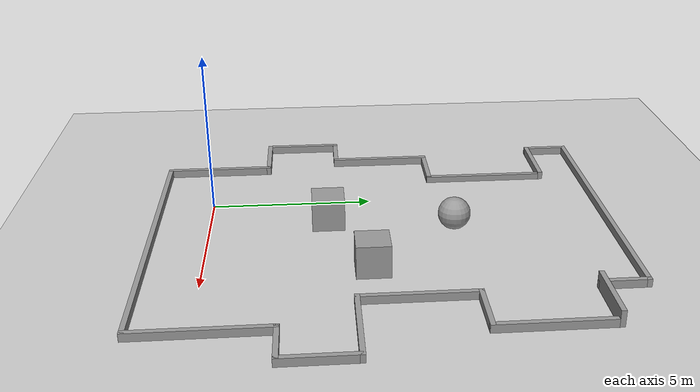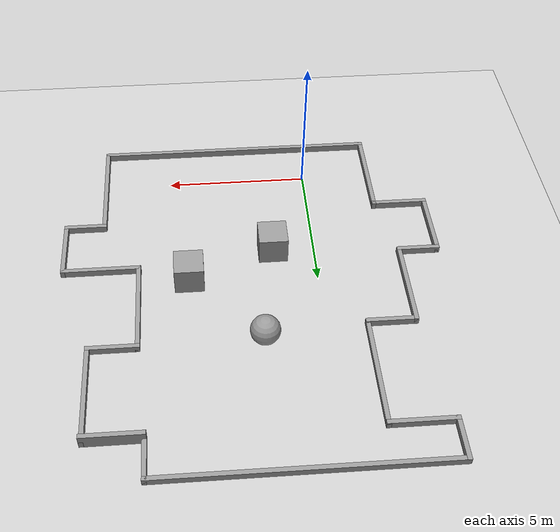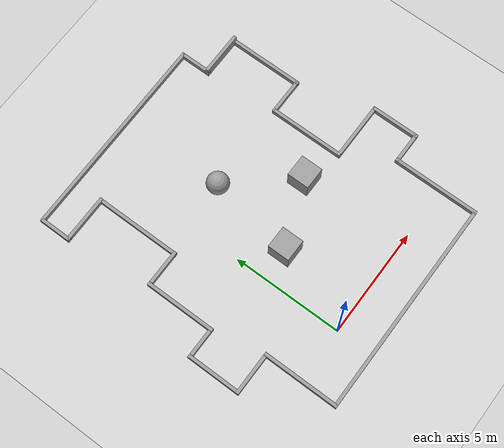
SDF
<sdf version="1.6">
 <world name="default">
  <light name="sun" type="directional">
   <pose>0 0 10 0 -0 0</pose>
   <diffuse>0.8 0.8 0.8 1</diffuse>
   <specular>0.2 0.2 0.2 1</specular>
   <attenuation>
    <range>1000</range>
    <constant>0.9</constant>
    <linear>0.01</linear>
    <quadratic>0.001</quadratic>
   </attenuation>
   <direction>-0.5 0.1 -0.9</direction>
  </light>
  <model name="ground_plane">
   <static>1</static>
   <link name="link">
    <collision name="collision">
     <geometry><plane><normal>0 0 1</normal><size>100 100</size></plane></geometry>
     <surface><friction><ode><mu>100</mu><mu2>50</mu2></ode></friction></surface>
    </collision>
    <visual name="visual">
     <cast_shadows>0</cast_shadows>
     <geometry><plane><normal>0 0 1</normal><size>100 100</size></plane></geometry>
     <material>
      <script><uri>file://media/materials/scripts/gazebo.material</uri><name>Gazebo/Grey</name></script>
     </material>
    </visual>
   </link>
  </model>
  <gravity>0 0 -9.8</gravity>
  <magnetic_field>6e-06 2.3e-05 -4.2e-05</magnetic_field>
  <atmosphere type="adiabatic"/>
  <physics name="default_physics" default="0" type="ode">
   <max_step_size>0.001</max_step_size>
   <real_time_factor>1</real_time_factor>
   <real_time_update_rate>1000</real_time_update_rate>
  </physics>
  <scene><ambient>0.4 0.4 0.4 1</ambient><background>0.7 0.7 0.7 1</background><shadows>1</shadows></scene>
  <audio><device>default</device></audio>
  <spherical_coordinates>
   <surface_model>EARTH_WGS84</surface_model>
   <latitude_deg>0</latitude_deg>
   <longitude_deg>0</longitude_deg>
   <elevation>0</elevation>
   <heading_deg>0</heading_deg>
  </spherical_coordinates>
  <model name="lc_test">
   <pose>2.20585 5.33473 0 0 -0 0</pose>
   <link name="Wall_14">
    <collision name="Wall_14_Collision">
     <geometry><box><size>10 0.15 0.25</size></box></geometry>
     <pose>0 0 0.125 0 -0 0</pose>
    </collision>
    <visual name="Wall_14_Visual">
     <pose>0 0 0.125 0 -0 0</pose>
     <geometry><box><size>10 0.15 0.25</size></box></geometry>
     <material>
      <script><uri>file://media/materials/scripts/gazebo.material</uri><name>Gazebo/Grey</name></script>
      <ambient>1 1 1 1</ambient>
     </material>
     <meta><layer>0</layer></meta>
    </visual>
    <pose>0.25 -7 0 0 -0 0</pose>
   </link>
   <link name="Wall_15">
    <collision name="Wall_15_Collision">
     <geometry><box><size>4 0.15 0.25</size></box></geometry>
     <pose>0 0 0.125 0 -0 0</pose>
    </collision>
    <visual name="Wall_15_Visual">
     <pose>0 0 0.125 0 -0 0</pose>
     <geometry><box><size>4 0.15 0.25</size></box></geometry>
     <material>
      <script><uri>file://media/materials/scripts/gazebo.material</uri><name>Gazebo/Grey</name></script>
      <ambient>1 1 1 1</ambient>
     </material>
     <meta><layer>0</layer></meta>
    </visual>
    <pose>5.175 -5.075 0 0 -0 1.5708</pose>
   </link>
   <link name="Wall_16">
    <collision name="Wall_16_Collision">
     <geometry><box><size>1.5 0.15 0.25</size></box></geometry>
     <pose>0 0 0.125 0 -0 0</pose>
    </collision>
    <visual name="Wall_16_Visual">
     <pose>0 0 0.125 0 -0 0</pose>
     <geometry><box><size>1.5 0.15 0.25</size></box></geometry>
     <material>
      <script><uri>file://media/materials/scripts/gazebo.material</uri><name>Gazebo/Grey</name></script>
      <ambient>1 1 1 1</ambient>
     </material>
     <meta><layer>0</layer></meta>
    </visual>
    <pose>5.85 -3.15 0 0 -0 0</pose>
   </link>
   <link name="Wall_17">
    <collision name="Wall_17_Collision">
     <geometry><box><size>2.25 0.15 0.25</size></box></geometry>
     <pose>0 0 0.125 0 -0 0</pose>
    </collision>
    <visual name="Wall_17_Visual">
     <pose>0 0 0.125 0 -0 0</pose>
     <geometry><box><size>2.25 0.15 0.25</size></box></geometry>
     <material>
      <script><uri>file://media/materials/scripts/gazebo.material</uri><name>Gazebo/Grey</name></script>
      <ambient>1 1 1 1</ambient>
     </material>
     <meta><layer>0</layer></meta>
    </visual>
    <pose>6.525 -2.1 0 0 -0 1.5708</pose>
   </link>
   <link name="Wall_18">
    <collision name="Wall_18_Collision">
     <geometry><box><size>2.75 0.15 0.25</size></box></geometry>
     <pose>0 0 0.125 0 -0 0</pose>
    </collision>
    <visual name="Wall_18_Visual">
     <pose>0 0 0.125 0 -0 0</pose>
     <geometry><box><size>2.75 0.15 0.25</size></box></geometry>
     <material>
      <script><uri>file://media/materials/scripts/gazebo.material</uri><name>Gazebo/Grey</name></script>
      <ambient>1 1 1 1</ambient>
     </material>
     <meta><layer>0</layer></meta>
    </visual>
    <pose>5.225 -1.05 0 0 -0 3.14159</pose>
   </link>
   <link name="Wall_19">
    <collision name="Wall_19_Collision">
     <geometry><box><size>3.5 0.15 0.25</size></box></geometry>
     <pose>0 0 0.125 0 -0 0</pose>
    </collision>
    <visual name="Wall_19_Visual">
     <pose>0 0 0.125 0 -0 0</pose>
     <geometry><box><size>3.5 0.15 0.25</size></box></geometry>
     <material>
      <script><uri>file://media/materials/scripts/gazebo.material</uri><name>Gazebo/Grey</name></script>
      <ambient>1 1 1 1</ambient>
     </material>
     <meta><layer>0</layer></meta>
    </visual>
    <pose>3.925 0.625 0 0 -0 1.5708</pose>
   </link>
   <link name="Wall_20">
    <collision name="Wall_20_Collision">
     <geometry><box><size>1.75 0.15 0.25</size></box></geometry>
     <pose>0 0 0.125 0 -0 0</pose>
    </collision>
    <visual name="Wall_20_Visual">
     <pose>0 0 0.125 0 -0 0</pose>
     <geometry><box><size>1.75 0.15 0.25</size></box></geometry>
     <material>
      <script><uri>file://media/materials/scripts/gazebo.material</uri><name>Gazebo/Grey</name></script>
      <ambient>1 1 1 1</ambient>
     </material>
     <meta><layer>0</layer></meta>
    </visual>
    <pose>4.725 2.3 0 0 -0 0</pose>
   </link>
   <link name="Wall_21">
    <collision name="Wall_21_Collision">
     <geometry><box><size>3.5 0.15 0.25</size></box></geometry>
     <pose>0 0 0.125 0 -0 0</pose>
    </collision>
    <visual name="Wall_21_Visual">
     <pose>0 0 0.125 0 -0 0</pose>
     <geometry><box><size>3.5 0.15 0.25</size></box></geometry>
     <material>
      <script><uri>file://media/materials/scripts/gazebo.material</uri><name>Gazebo/Grey</name></script>
      <ambient>1 1 1 1</ambient>
     </material>
     <meta><layer>0</layer></meta>
    </visual>
    <pose>5.525 3.975 0 0 -0 1.5708</pose>
   </link>
   <link name="Wall_22">
    <collision name="Wall_22_Collision">
     <geometry><box><size>2 0.15 0.5</size></box></geometry>
     <pose>0 0 0.25 0 -0 0</pose>
    </collision>
    <visual name="Wall_22_Visual">
     <pose>0 0 0.25 0 -0 0</pose>
     <geometry><box><size>2 0.15 0.5</size></box></geometry>
     <material>
      <script><uri>file://media/materials/scripts/gazebo.material</uri><name>Gazebo/Grey</name></script>
      <ambient>1 1 1 1</ambient>
     </material>
     <meta><layer>0</layer></meta>
    </visual>
    <pose>4.6 5.65 0 0 -0 3.14159</pose>
   </link>
   <link name="Wall_25">
    <collision name="Wall_25_Collision">
     <geometry><box><size>3.5 0.15 0.25</size></box></geometry>
     <pose>0 0 0.125 0 -0 0</pose>
    </collision>
    <visual name="Wall_25_Visual">
     <pose>0 0 0.125 0 -0 0</pose>
     <geometry><box><size>3.5 0.15 0.25</size></box></geometry>
     <material>
      <script><uri>file://media/materials/scripts/gazebo.material</uri><name>Gazebo/Grey</name></script>
      <ambient>1 1 1 1</ambient>
     </material>
     <meta><layer>0</layer></meta>
    </visual>
    <pose>-4.675 -5.325 0 0 -0 1.5708</pose>
   </link>
   <link name="Wall_26">
    <collision name="Wall_26_Collision">
     <geometry><box><size>2 0.15 0.25</size></box></geometry>
     <pose>0 0 0.125 0 -0 0</pose>
    </collision>
    <visual name="Wall_26_Visual">
     <pose>0 0 0.125 0 -0 0</pose>
     <geometry><box><size>2 0.15 0.25</size></box></geometry>
     <material>
      <script><uri>file://media/materials/scripts/gazebo.material</uri><name>Gazebo/Grey</name></script>
      <ambient>1 1 1 1</ambient>
     </material>
     <meta><layer>0</layer></meta>
    </visual>
    <pose>-5.6 -3.65 0 0 -0 3.14159</pose>
   </link>
   <link name="Wall_27">
    <collision name="Wall_27_Collision">
     <geometry><box><size>2.5 0.15 0.25</size></box></geometry>
     <pose>0 0 0.125 0 -0 0</pose>
    </collision>
    <visual name="Wall_27_Visual">
     <pose>0 0 0.125 0 -0 0</pose>
     <geometry><box><size>2.5 0.15 0.25</size></box></geometry>
     <material>
      <script><uri>file://media/materials/scripts/gazebo.material</uri><name>Gazebo/Grey</name></script>
      <ambient>1 1 1 1</ambient>
     </material>
     <meta><layer>0</layer></meta>
    </visual>
    <pose>-6.525 -2.475 0 0 -0 1.5708</pose>
   </link>
   <link name="Wall_28">
    <collision name="Wall_28_Collision">
     <geometry><box><size>1.5 0.15 0.25</size></box></geometry>
     <pose>0 0 0.125 0 -0 0</pose>
    </collision>
    <visual name="Wall_28_Visual">
     <pose>0 0 0.125 0 -0 0</pose>
     <geometry><box><size>1.5 0.15 0.25</size></box></geometry>
     <material>
      <script><uri>file://media/materials/scripts/gazebo.material</uri><name>Gazebo/Grey</name></script>
      <ambient>1 1 1 1</ambient>
     </material>
     <meta><layer>0</layer></meta>
    </visual>
    <pose>-5.85 -1.3 0 0 -0 0</pose>
   </link>
   <link name="Wall_29">
    <collision name="Wall_29_Collision">
     <geometry><box><size>3.25 0.15 0.25</size></box></geometry>
     <pose>0 0 0.125 0 -0 0</pose>
    </collision>
    <visual name="Wall_29_Visual">
     <pose>0 0 0.125 0 -0 0</pose>
     <geometry><box><size>3.25 0.15 0.25</size></box></geometry>
     <material>
      <script><uri>file://media/materials/scripts/gazebo.material</uri><name>Gazebo/Grey</name></script>
      <ambient>1 1 1 1</ambient>
     </material>
     <meta><layer>0</layer></meta>
    </visual>
    <pose>-5.175 0.25 0 0 -0 1.5708</pose>
   </link>
   <link name="Wall_30">
    <collision name="Wall_30_Collision">
     <geometry><box><size>1.75 0.15 0.25</size></box></geometry>
     <pose>0 0 0.125 0 -0 0</pose>
    </collision>
    <visual name="Wall_30_Visual">
     <pose>0 0 0.125 0 -0 0</pose>
     <geometry><box><size>1.75 0.15 0.25</size></box></geometry>
     <material>
      <script><uri>file://media/materials/scripts/gazebo.material</uri><name>Gazebo/Grey</name></script>
      <ambient>1 1 1 1</ambient>
     </material>
     <meta><layer>0</layer></meta>
    </visual>
    <pose>-4.375 1.8 0 0 -0 0</pose>
   </link>
   <link name="Wall_31">
    <collision name="Wall_31_Collision">
     <geometry><box><size>4 0.15 0.2</size></box></geometry>
     <pose>0 0 0.1 0 -0 0</pose>
    </collision>
    <visual name="Wall_31_Visual">
     <pose>0 0 0.1 0 -0 0</pose>
     <geometry><box><size>4 0.15 0.2</size></box></geometry>
     <material>
      <script><uri>file://media/materials/scripts/gazebo.material</uri><name>Gazebo/Grey</name></script>
      <ambient>1 1 1 1</ambient>
     </material>
     <meta><layer>0</layer></meta>
    </visual>
    <pose>-3.575 3.725 0 0 -0 1.5708</pose>
   </link>
   <link name="Wall_32">
    <collision name="Wall_32_Collision">
     <geometry><box><size>2.25 0.15 0.25</size></box></geometry>
     <pose>0 0 0.125 0 -0 0</pose>
    </collision>
    <visual name="Wall_32_Visual">
     <pose>0 0 0.125 0 -0 0</pose>
     <geometry><box><size>2.25 0.15 0.25</size></box></geometry>
     <material>
      <script><uri>file://media/materials/scripts/gazebo.material</uri><name>Gazebo/Grey</name></script>
      <ambient>1 1 1 1</ambient>
     </material>
     <meta><layer>0</layer></meta>
    </visual>
    <pose>-4.625 5.65 0 0 -0 3.14159</pose>
   </link>
   <link name="Wall_33">
    <collision name="Wall_33_Collision">
     <geometry><box><size>1.5 0.15 0.25</size></box></geometry>
     <pose>0 0 0.125 0 -0 0</pose>
    </collision>
    <visual name="Wall_33_Visual">
     <pose>0 0 0.125 0 -0 0</pose>
     <geometry><box><size>1.5 0.15 0.25</size></box></geometry>
     <material>
      <script><uri>file://media/materials/scripts/gazebo.material</uri><name>Gazebo/Grey</name></script>
      <ambient>1 1 1 1</ambient>
     </material>
     <meta><layer>0</layer></meta>
    </visual>
    <pose>-5.675 6.325 0 0 -0 1.5708</pose>
   </link>
   <link name="Wall_34">
    <collision name="Wall_34_Collision">
     <geometry><box><size>9.5 0.15 0.25</size></box></geometry>
     <pose>0 0 0.125 0 -0 0</pose>
    </collision>
    <visual name="Wall_34_Visual">
     <pose>0 0 0.125 0 -0 0</pose>
     <geometry><box><size>9.5 0.15 0.25</size></box></geometry>
     <material>
      <script><uri>file://media/materials/scripts/gazebo.material</uri><name>Gazebo/Grey</name></script>
      <ambient>1 1 1 1</ambient>
     </material>
     <meta><layer>0</layer></meta>
    </visual>
    <pose>-1 7 0 0 -0 0</pose>
   </link>
   <link name="Wall_36">
    <collision name="Wall_36_Collision">
     <geometry><box><size>1.5 0.15 0.25</size></box></geometry>
     <pose>0 0 0.125 0 -0 0</pose>
    </collision>
    <visual name="Wall_36_Visual">
     <pose>0 0 0.125 0 -0 0</pose>
     <geometry><box><size>1.5 0.15 0.25</size></box></geometry>
     <material>
      <script><uri>file://media/materials/scripts/gazebo.material</uri><name>Gazebo/Grey</name></script>
      <ambient>1 1 1 1</ambient>
     </material>
     <meta><layer>0</layer></meta>
    </visual>
    <pose>3.675 6.325 0 0 -0 1.5708</pose>
   </link>
   <static>1</static>
  </model>
  <model name="unit_sphere">
   <pose>2.02324 7.4991 0.5 0 -0 0</pose>
   <link name="link">
    <inertial>
     <mass>1</mass>
     <inertia><ixx>0.1</ixx><ixy>0</ixy><ixz>0</ixz><iyy>0.1</iyy><iyz>0</iyz><izz>0.1</izz></inertia>
    </inertial>
    <collision name="collision"><geometry><sphere><radius>0.5</radius></sphere></geometry></collision>
    <visual name="visual">
     <geometry><sphere><radius>0.5</radius></sphere></geometry>
     <material>
      <script><name>Gazebo/Grey</name><uri>file://media/materials/scripts/gazebo.material</uri></script>
     </material>
    </visual>
   </link>
  </model>
  <model name="unit_box">
   <pose>4.40036 4.82509 0.499995 1e-05 -0 0</pose>
   <link name="link">
    <inertial>
     <mass>1</mass>
     <inertia>
      <ixx>0.166667</ixx>
      <ixy>0</ixy>
      <ixz>0</ixz>
      <iyy>0.166667</iyy>
      <iyz>0</iyz>
      <izz>0.166667</izz>
     </inertia>
    </inertial>
    <collision name="collision"><geometry><box><size>1 1 1</size></box></geometry></collision>
    <visual name="visual">
     <geometry><box><size>1 1 1</size></box></geometry>
     <material>
      <script><name>Gazebo/Grey</name><uri>file://media/materials/scripts/gazebo.material</uri></script>
     </material>
    </visual>
   </link>
  </model>
  <model name="unit_box_0">
   <pose>1.46091 3.64609 0.499995 -1e-05 -0 0</pose>
   <link name="link">
    <inertial>
     <mass>1</mass>
     <inertia>
      <ixx>0.166667</ixx>
      <ixy>0</ixy>
      <ixz>0</ixz>
      <iyy>0.166667</iyy>
      <iyz>0</iyz>
      <izz>0.166667</izz>
     </inertia>
    </inertial>
    <collision name="collision"><geometry><box><size>1 1 1</size></box></geometry></collision>
    <visual name="visual">
     <geometry><box><size>1 1 1</size></box></geometry>
     <material>
      <script><name>Gazebo/Grey</name><uri>file://media/materials/scripts/gazebo.material</uri></script>
     </material>
    </visual>
   </link>
  </model>
 </world>
</sdf>
